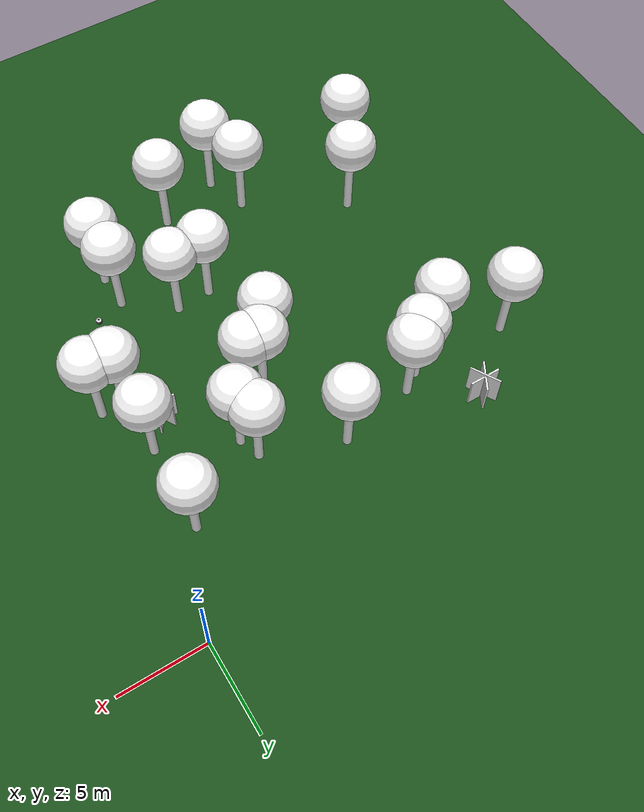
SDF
<sdf version="1.8">
 <world name="forest_world">
  <model name="fire_29">
   <pose>-3.76 -12.13 1.00 0 0 0.00</pose>
   <static>true</static>
   <link name="fire_link">
    <visual name="fire_29_fire_main_0">
     <geometry><box><size>1.80 0.10 2.00</size></box></geometry>
     <material>
      <ambient>0.7 0.35 0.0 1</ambient>
      <diffuse>1 1 1 1</diffuse>
      <specular>0 0 0 1</specular>
      <emissive>0 0 0 1</emissive>
      <pbr>
       <metal><albedo_map>textures/fire.png</albedo_map><metalness>0.0</metalness><roughness>0.6</roughness></metal>
      </pbr>
     </material>
     <transparency>0.0</transparency>
     <cast_shadows>false</cast_shadows>
    </visual>
    <visual name="fire_29_fire_60_1">
     <pose>0.00 0.00 0.10 0 0 1.05</pose>
     <geometry><box><size>1.80 0.10 2.00</size></box></geometry>
     <material>
      <ambient>0.7 0.35 0.0 1</ambient>
      <diffuse>1 1 1 1</diffuse>
      <specular>0 0 0 1</specular>
      <emissive>0 0 0 1</emissive>
      <pbr>
       <metal><albedo_map>textures/fire.png</albedo_map><metalness>0.0</metalness><roughness>0.6</roughness></metal>
      </pbr>
     </material>
     <transparency>0.0</transparency>
     <cast_shadows>false</cast_shadows>
    </visual>
    <visual name="fire_29_fire_120_2">
     <pose>0.00 0.00 0.20 0 0 2.09</pose>
     <geometry><box><size>1.80 0.10 2.00</size></box></geometry>
     <material>
      <ambient>0.7 0.35 0.0 1</ambient>
      <diffuse>1 1 1 1</diffuse>
      <specular>0 0 0 1</specular>
      <emissive>0 0 0 1</emissive>
      <pbr>
       <metal><albedo_map>textures/fire.png</albedo_map><metalness>0.0</metalness><roughness>0.6</roughness></metal>
      </pbr>
     </material>
     <transparency>0.0</transparency>
     <cast_shadows>false</cast_shadows>
    </visual>
    <light type="point" name="fire_29_light_0">
     <pose>0.40 0.00 0.50 0 0 0</pose>
     <diffuse>1.0 0.7 0.3 1</diffuse>
     <specular>1.0 0.8 0.3 1</specular>
     <intensity>2</intensity>
     <attenuation>
      <range>2</range>
      <constant>0.1</constant>
      <linear>0.05</linear>
      <quadratic>0.02</quadratic>
     </attenuation>
     <cast_shadows>false</cast_shadows>
    </light>
    <light type="point" name="fire_29_light_1">
     <pose>-0.20 0.35 0.50 0 0 0</pose>
     <diffuse>1.0 0.7 0.3 1</diffuse>
     <specular>1.0 0.8 0.3 1</specular>
     <intensity>2</intensity>
     <attenuation>
      <range>2</range>
      <constant>0.1</constant>
      <linear>0.05</linear>
      <quadratic>0.02</quadratic>
     </attenuation>
     <cast_shadows>false</cast_shadows>
    </light>
    <light type="point" name="fire_29_light_2">
     <pose>-0.20 -0.35 0.50 0 0 0</pose>
     <diffuse>1.0 0.7 0.3 1</diffuse>
     <specular>1.0 0.8 0.3 1</specular>
     <intensity>2</intensity>
     <attenuation>
      <range>2</range>
      <constant>0.1</constant>
      <linear>0.05</linear>
      <quadratic>0.02</quadratic>
     </attenuation>
     <cast_shadows>false</cast_shadows>
    </light>
   </link>
   <plugin filename="libignition-gazebo-pose-publisher-system.so" name="ignition::gazebo::systems::PosePublisher">
    <frame_id>world</frame_id>
    <publish_link_pose>true</publish_link_pose>
    <use_pose_vector_msg>true</use_pose_vector_msg>
    <static_publisher>true</static_publisher>
    <static_update_frequency>1</static_update_frequency>
   </plugin>
  </model>
  <model name="fire_40">
   <pose>-19.46 -4.42 1.00 0 0 0.00</pose>
   <static>true</static>
   <link name="fire_link">
    <visual name="fire_40_fire_main_0">
     <geometry><box><size>1.80 0.10 2.00</size></box></geometry>
     <material>
      <ambient>0.7 0.35 0.0 1</ambient>
      <diffuse>1 1 1 1</diffuse>
      <specular>0 0 0 1</specular>
      <emissive>0 0 0 1</emissive>
      <pbr>
       <metal><albedo_map>textures/fire.png</albedo_map><metalness>0.0</metalness><roughness>0.6</roughness></metal>
      </pbr>
     </material>
     <transparency>0.0</transparency>
     <cast_shadows>false</cast_shadows>
    </visual>
    <visual name="fire_40_fire_60_1">
     <pose>0.00 0.00 0.10 0 0 1.05</pose>
     <geometry><box><size>1.80 0.10 2.00</size></box></geometry>
     <material>
      <ambient>0.7 0.35 0.0 1</ambient>
      <diffuse>1 1 1 1</diffuse>
      <specular>0 0 0 1</specular>
      <emissive>0 0 0 1</emissive>
      <pbr>
       <metal><albedo_map>textures/fire.png</albedo_map><metalness>0.0</metalness><roughness>0.6</roughness></metal>
      </pbr>
     </material>
     <transparency>0.0</transparency>
     <cast_shadows>false</cast_shadows>
    </visual>
    <visual name="fire_40_fire_120_2">
     <pose>0.00 0.00 0.20 0 0 2.09</pose>
     <geometry><box><size>1.80 0.10 2.00</size></box></geometry>
     <material>
      <ambient>0.7 0.35 0.0 1</ambient>
      <diffuse>1 1 1 1</diffuse>
      <specular>0 0 0 1</specular>
      <emissive>0 0 0 1</emissive>
      <pbr>
       <metal><albedo_map>textures/fire.png</albedo_map><metalness>0.0</metalness><roughness>0.6</roughness></metal>
      </pbr>
     </material>
     <transparency>0.0</transparency>
     <cast_shadows>false</cast_shadows>
    </visual>
    <light type="point" name="fire_40_light_0">
     <pose>0.40 0.00 0.50 0 0 0</pose>
     <diffuse>1.0 0.7 0.3 1</diffuse>
     <specular>1.0 0.8 0.3 1</specular>
     <intensity>2</intensity>
     <attenuation>
      <range>2</range>
      <constant>0.1</constant>
      <linear>0.05</linear>
      <quadratic>0.02</quadratic>
     </attenuation>
     <cast_shadows>false</cast_shadows>
    </light>
    <light type="point" name="fire_40_light_1">
     <pose>-0.20 0.35 0.50 0 0 0</pose>
     <diffuse>1.0 0.7 0.3 1</diffuse>
     <specular>1.0 0.8 0.3 1</specular>
     <intensity>2</intensity>
     <attenuation>
      <range>2</range>
      <constant>0.1</constant>
      <linear>0.05</linear>
      <quadratic>0.02</quadratic>
     </attenuation>
     <cast_shadows>false</cast_shadows>
    </light>
    <light type="point" name="fire_40_light_2">
     <pose>-0.20 -0.35 0.50 0 0 0</pose>
     <diffuse>1.0 0.7 0.3 1</diffuse>
     <specular>1.0 0.8 0.3 1</specular>
     <intensity>2</intensity>
     <attenuation>
      <range>2</range>
      <constant>0.1</constant>
      <linear>0.05</linear>
      <quadratic>0.02</quadratic>
     </attenuation>
     <cast_shadows>false</cast_shadows>
    </light>
   </link>
   <plugin filename="libignition-gazebo-pose-publisher-system.so" name="ignition::gazebo::systems::PosePublisher">
    <frame_id>world</frame_id>
    <publish_link_pose>true</publish_link_pose>
    <use_pose_vector_msg>true</use_pose_vector_msg>
    <static_publisher>true</static_publisher>
    <static_update_frequency>1</static_update_frequency>
   </plugin>
  </model>
  <model name="tree_simple418">
   <static>1</static>
   <link name="link">
    <pose>0 0 0.1 0 -0 0</pose>
    <collision name="collision_trunk">
     <pose>0 0 2 0 -0 0</pose>
     <geometry><cylinder><radius>0.25</radius><length>4</length></cylinder></geometry>
    </collision>
    <collision name="collision_treetop">
     <pose>0 0 5.2 0 -0 0</pose>
     <geometry><sphere><radius>1.5</radius></sphere></geometry>
    </collision>
    <visual name="trunk">
     <pose>0 0 2 0 -0 0</pose>
     <geometry><cylinder><radius>0.25</radius><length>4</length></cylinder></geometry>
     <material>
      <ambient>0.5 0.5 0.5 1</ambient>
      <diffuse>1.0 1.0 1.0 1</diffuse>
      <specular>0.0 0.0 0.0 1</specular>
      <pbr>
       <metal>
        <albedo_map>../worlds/textures/tree_simple_trunk.jpg</albedo_map>
        <metalness>0.0</metalness>
        <roughness>0.8</roughness>
       </metal>
      </pbr>
     </material>
    </visual>
    <visual name="treetop">
     <pose>0 0 5.2 0 -0 0</pose>
     <geometry><sphere><radius>1.5</radius></sphere></geometry>
     <material>
      <ambient>0.5 0.5 0.5 1</ambient>
      <diffuse>1.0 1.0 1.0 1</diffuse>
      <specular>0.0 0.0 0.0 1</specular>
      <pbr>
       <metal>
        <albedo_map>../worlds/textures/tree_simple_treetop.jpg</albedo_map>
        <metalness>0.0</metalness>
        <roughness>0.9</roughness>
       </metal>
      </pbr>
     </material>
    </visual>
   </link>
   <pose>-22.9841604277 -7.39292719752 0 0 -0 0</pose>
  </model>
  <model name="tree_simple415">
   <static>1</static>
   <link name="link">
    <pose>0 0 0.1 0 -0 0</pose>
    <collision name="collision_trunk">
     <pose>0 0 2 0 -0 0</pose>
     <geometry><cylinder><radius>0.25</radius><length>4</length></cylinder></geometry>
    </collision>
    <collision name="collision_treetop">
     <pose>0 0 5.2 0 -0 0</pose>
     <geometry><sphere><radius>1.5</radius></sphere></geometry>
    </collision>
    <visual name="trunk">
     <pose>0 0 2 0 -0 0</pose>
     <geometry><cylinder><radius>0.25</radius><length>4</length></cylinder></geometry>
     <material>
      <ambient>0.5 0.5 0.5 1</ambient>
      <diffuse>1.0 1.0 1.0 1</diffuse>
      <specular>0.0 0.0 0.0 1</specular>
      <pbr>
       <metal>
        <albedo_map>../worlds/textures/tree_simple_trunk.jpg</albedo_map>
        <metalness>0.0</metalness>
        <roughness>0.8</roughness>
       </metal>
      </pbr>
     </material>
    </visual>
    <visual name="treetop">
     <pose>0 0 5.2 0 -0 0</pose>
     <geometry><sphere><radius>1.5</radius></sphere></geometry>
     <material>
      <ambient>0.5 0.5 0.5 1</ambient>
      <diffuse>1.0 1.0 1.0 1</diffuse>
      <specular>0.0 0.0 0.0 1</specular>
      <pbr>
       <metal>
        <albedo_map>../worlds/textures/tree_simple_treetop.jpg</albedo_map>
        <metalness>0.0</metalness>
        <roughness>0.9</roughness>
       </metal>
      </pbr>
     </material>
    </visual>
   </link>
   <pose>-11.6355979465 -5.8252534874 0 0 -0 0</pose>
  </model>
  <model name="tree_simple395">
   <static>1</static>
   <link name="link">
    <pose>0 0 0.1 0 -0 0</pose>
    <collision name="collision_trunk">
     <pose>0 0 2 0 -0 0</pose>
     <geometry><cylinder><radius>0.25</radius><length>4</length></cylinder></geometry>
    </collision>
    <collision name="collision_treetop">
     <pose>0 0 5.2 0 -0 0</pose>
     <geometry><sphere><radius>1.5</radius></sphere></geometry>
    </collision>
    <visual name="trunk">
     <pose>0 0 2 0 -0 0</pose>
     <geometry><cylinder><radius>0.25</radius><length>4</length></cylinder></geometry>
     <material>
      <ambient>0.5 0.5 0.5 1</ambient>
      <diffuse>1.0 1.0 1.0 1</diffuse>
      <specular>0.0 0.0 0.0 1</specular>
      <pbr>
       <metal>
        <albedo_map>../worlds/textures/tree_simple_trunk.jpg</albedo_map>
        <metalness>0.0</metalness>
        <roughness>0.8</roughness>
       </metal>
      </pbr>
     </material>
    </visual>
    <visual name="treetop">
     <pose>0 0 5.2 0 -0 0</pose>
     <geometry><sphere><radius>1.5</radius></sphere></geometry>
     <material>
      <ambient>0.5 0.5 0.5 1</ambient>
      <diffuse>1.0 1.0 1.0 1</diffuse>
      <specular>0.0 0.0 0.0 1</specular>
      <pbr>
       <metal>
        <albedo_map>../worlds/textures/tree_simple_treetop.jpg</albedo_map>
        <metalness>0.0</metalness>
        <roughness>0.9</roughness>
       </metal>
      </pbr>
     </material>
    </visual>
   </link>
   <pose>-14.8909068885 -23.0244241553 0 0 -0 0</pose>
  </model>
  <model name="tree_simple392">
   <static>1</static>
   <link name="link">
    <pose>0 0 0.1 0 -0 0</pose>
    <collision name="collision_trunk">
     <pose>0 0 2 0 -0 0</pose>
     <geometry><cylinder><radius>0.25</radius><length>4</length></cylinder></geometry>
    </collision>
    <collision name="collision_treetop">
     <pose>0 0 5.2 0 -0 0</pose>
     <geometry><sphere><radius>1.5</radius></sphere></geometry>
    </collision>
    <visual name="trunk">
     <pose>0 0 2 0 -0 0</pose>
     <geometry><cylinder><radius>0.25</radius><length>4</length></cylinder></geometry>
     <material>
      <ambient>0.5 0.5 0.5 1</ambient>
      <diffuse>1.0 1.0 1.0 1</diffuse>
      <specular>0.0 0.0 0.0 1</specular>
      <pbr>
       <metal>
        <albedo_map>../worlds/textures/tree_simple_trunk.jpg</albedo_map>
        <metalness>0.0</metalness>
        <roughness>0.8</roughness>
       </metal>
      </pbr>
     </material>
    </visual>
    <visual name="treetop">
     <pose>0 0 5.2 0 -0 0</pose>
     <geometry><sphere><radius>1.5</radius></sphere></geometry>
     <material>
      <ambient>0.5 0.5 0.5 1</ambient>
      <diffuse>1.0 1.0 1.0 1</diffuse>
      <specular>0.0 0.0 0.0 1</specular>
      <pbr>
       <metal>
        <albedo_map>../worlds/textures/tree_simple_treetop.jpg</albedo_map>
        <metalness>0.0</metalness>
        <roughness>0.9</roughness>
       </metal>
      </pbr>
     </material>
    </visual>
   </link>
   <pose>-2.49227665262 -10.6347787598 0 0 -0 0</pose>
  </model>
  <model name="tree_simple386">
   <static>1</static>
   <link name="link">
    <pose>0 0 0.1 0 -0 0</pose>
    <collision name="collision_trunk">
     <pose>0 0 2 0 -0 0</pose>
     <geometry><cylinder><radius>0.25</radius><length>4</length></cylinder></geometry>
    </collision>
    <collision name="collision_treetop">
     <pose>0 0 5.2 0 -0 0</pose>
     <geometry><sphere><radius>1.5</radius></sphere></geometry>
    </collision>
    <visual name="trunk">
     <pose>0 0 2 0 -0 0</pose>
     <geometry><cylinder><radius>0.25</radius><length>4</length></cylinder></geometry>
     <material>
      <ambient>0.5 0.5 0.5 1</ambient>
      <diffuse>1.0 1.0 1.0 1</diffuse>
      <specular>0.0 0.0 0.0 1</specular>
      <pbr>
       <metal>
        <albedo_map>../worlds/textures/tree_simple_trunk.jpg</albedo_map>
        <metalness>0.0</metalness>
        <roughness>0.8</roughness>
       </metal>
      </pbr>
     </material>
    </visual>
    <visual name="treetop">
     <pose>0 0 5.2 0 -0 0</pose>
     <geometry><sphere><radius>1.5</radius></sphere></geometry>
     <material>
      <ambient>0.5 0.5 0.5 1</ambient>
      <diffuse>1.0 1.0 1.0 1</diffuse>
      <specular>0.0 0.0 0.0 1</specular>
      <pbr>
       <metal>
        <albedo_map>../worlds/textures/tree_simple_treetop.jpg</albedo_map>
        <metalness>0.0</metalness>
        <roughness>0.9</roughness>
       </metal>
      </pbr>
     </material>
    </visual>
   </link>
   <pose>-19.2490777258 -8.77456979873 0 0 -0 0</pose>
  </model>
  <model name="tree_simple364">
   <static>1</static>
   <link name="link">
    <pose>0 0 0.1 0 -0 0</pose>
    <collision name="collision_trunk">
     <pose>0 0 2 0 -0 0</pose>
     <geometry><cylinder><radius>0.25</radius><length>4</length></cylinder></geometry>
    </collision>
    <collision name="collision_treetop">
     <pose>0 0 5.2 0 -0 0</pose>
     <geometry><sphere><radius>1.5</radius></sphere></geometry>
    </collision>
    <visual name="trunk">
     <pose>0 0 2 0 -0 0</pose>
     <geometry><cylinder><radius>0.25</radius><length>4</length></cylinder></geometry>
     <material>
      <ambient>0.5 0.5 0.5 1</ambient>
      <diffuse>1.0 1.0 1.0 1</diffuse>
      <specular>0.0 0.0 0.0 1</specular>
      <pbr>
       <metal>
        <albedo_map>../worlds/textures/tree_simple_trunk.jpg</albedo_map>
        <metalness>0.0</metalness>
        <roughness>0.8</roughness>
       </metal>
      </pbr>
     </material>
    </visual>
    <visual name="treetop">
     <pose>0 0 5.2 0 -0 0</pose>
     <geometry><sphere><radius>1.5</radius></sphere></geometry>
     <material>
      <ambient>0.5 0.5 0.5 1</ambient>
      <diffuse>1.0 1.0 1.0 1</diffuse>
      <specular>0.0 0.0 0.0 1</specular>
      <pbr>
       <metal>
        <albedo_map>../worlds/textures/tree_simple_treetop.jpg</albedo_map>
        <metalness>0.0</metalness>
        <roughness>0.9</roughness>
       </metal>
      </pbr>
     </material>
    </visual>
   </link>
   <pose>-5.23612591395 -20.1562951187 0 0 -0 0</pose>
  </model>
  <model name="tree_simple349">
   <static>1</static>
   <link name="link">
    <pose>0 0 0.1 0 -0 0</pose>
    <collision name="collision_trunk">
     <pose>0 0 2 0 -0 0</pose>
     <geometry><cylinder><radius>0.25</radius><length>4</length></cylinder></geometry>
    </collision>
    <collision name="collision_treetop">
     <pose>0 0 5.2 0 -0 0</pose>
     <geometry><sphere><radius>1.5</radius></sphere></geometry>
    </collision>
    <visual name="trunk">
     <pose>0 0 2 0 -0 0</pose>
     <geometry><cylinder><radius>0.25</radius><length>4</length></cylinder></geometry>
     <material>
      <ambient>0.5 0.5 0.5 1</ambient>
      <diffuse>1.0 1.0 1.0 1</diffuse>
      <specular>0.0 0.0 0.0 1</specular>
      <pbr>
       <metal>
        <albedo_map>../worlds/textures/tree_simple_trunk.jpg</albedo_map>
        <metalness>0.0</metalness>
        <roughness>0.8</roughness>
       </metal>
      </pbr>
     </material>
    </visual>
    <visual name="treetop">
     <pose>0 0 5.2 0 -0 0</pose>
     <geometry><sphere><radius>1.5</radius></sphere></geometry>
     <material>
      <ambient>0.5 0.5 0.5 1</ambient>
      <diffuse>1.0 1.0 1.0 1</diffuse>
      <specular>0.0 0.0 0.0 1</specular>
      <pbr>
       <metal>
        <albedo_map>../worlds/textures/tree_simple_treetop.jpg</albedo_map>
        <metalness>0.0</metalness>
        <roughness>0.9</roughness>
       </metal>
      </pbr>
     </material>
    </visual>
   </link>
   <pose>-20.4686708935 -19.6389151122 0 0 -0 0</pose>
  </model>
  <model name="tree_simple347">
   <static>1</static>
   <link name="link">
    <pose>0 0 0.1 0 -0 0</pose>
    <collision name="collision_trunk">
     <pose>0 0 2 0 -0 0</pose>
     <geometry><cylinder><radius>0.25</radius><length>4</length></cylinder></geometry>
    </collision>
    <collision name="collision_treetop">
     <pose>0 0 5.2 0 -0 0</pose>
     <geometry><sphere><radius>1.5</radius></sphere></geometry>
    </collision>
    <visual name="trunk">
     <pose>0 0 2 0 -0 0</pose>
     <geometry><cylinder><radius>0.25</radius><length>4</length></cylinder></geometry>
     <material>
      <ambient>0.5 0.5 0.5 1</ambient>
      <diffuse>1.0 1.0 1.0 1</diffuse>
      <specular>0.0 0.0 0.0 1</specular>
      <pbr>
       <metal>
        <albedo_map>../worlds/textures/tree_simple_trunk.jpg</albedo_map>
        <metalness>0.0</metalness>
        <roughness>0.8</roughness>
       </metal>
      </pbr>
     </material>
    </visual>
    <visual name="treetop">
     <pose>0 0 5.2 0 -0 0</pose>
     <geometry><sphere><radius>1.5</radius></sphere></geometry>
     <material>
      <ambient>0.5 0.5 0.5 1</ambient>
      <diffuse>1.0 1.0 1.0 1</diffuse>
      <specular>0.0 0.0 0.0 1</specular>
      <pbr>
       <metal>
        <albedo_map>../worlds/textures/tree_simple_treetop.jpg</albedo_map>
        <metalness>0.0</metalness>
        <roughness>0.9</roughness>
       </metal>
      </pbr>
     </material>
    </visual>
   </link>
   <pose>-10.2981062424 -24.1175281228 0 0 -0 0</pose>
  </model>
  <model name="tree_simple322">
   <static>1</static>
   <link name="link">
    <pose>0 0 0.1 0 -0 0</pose>
    <collision name="collision_trunk">
     <pose>0 0 2 0 -0 0</pose>
     <geometry><cylinder><radius>0.25</radius><length>4</length></cylinder></geometry>
    </collision>
    <collision name="collision_treetop">
     <pose>0 0 5.2 0 -0 0</pose>
     <geometry><sphere><radius>1.5</radius></sphere></geometry>
    </collision>
    <visual name="trunk">
     <pose>0 0 2 0 -0 0</pose>
     <geometry><cylinder><radius>0.25</radius><length>4</length></cylinder></geometry>
     <material>
      <ambient>0.5 0.5 0.5 1</ambient>
      <diffuse>1.0 1.0 1.0 1</diffuse>
      <specular>0.0 0.0 0.0 1</specular>
      <pbr>
       <metal>
        <albedo_map>../worlds/textures/tree_simple_trunk.jpg</albedo_map>
        <metalness>0.0</metalness>
        <roughness>0.8</roughness>
       </metal>
      </pbr>
     </material>
    </visual>
    <visual name="treetop">
     <pose>0 0 5.2 0 -0 0</pose>
     <geometry><sphere><radius>1.5</radius></sphere></geometry>
     <material>
      <ambient>0.5 0.5 0.5 1</ambient>
      <diffuse>1.0 1.0 1.0 1</diffuse>
      <specular>0.0 0.0 0.0 1</specular>
      <pbr>
       <metal>
        <albedo_map>../worlds/textures/tree_simple_treetop.jpg</albedo_map>
        <metalness>0.0</metalness>
        <roughness>0.9</roughness>
       </metal>
      </pbr>
     </material>
    </visual>
   </link>
   <pose>-10.7837387112 -12.8598856653 0 0 -0 0</pose>
  </model>
  <model name="tree_simple303">
   <static>1</static>
   <link name="link">
    <pose>0 0 0.1 0 -0 0</pose>
    <collision name="collision_trunk">
     <pose>0 0 2 0 -0 0</pose>
     <geometry><cylinder><radius>0.25</radius><length>4</length></cylinder></geometry>
    </collision>
    <collision name="collision_treetop">
     <pose>0 0 5.2 0 -0 0</pose>
     <geometry><sphere><radius>1.5</radius></sphere></geometry>
    </collision>
    <visual name="trunk">
     <pose>0 0 2 0 -0 0</pose>
     <geometry><cylinder><radius>0.25</radius><length>4</length></cylinder></geometry>
     <material>
      <ambient>0.5 0.5 0.5 1</ambient>
      <diffuse>1.0 1.0 1.0 1</diffuse>
      <specular>0.0 0.0 0.0 1</specular>
      <pbr>
       <metal>
        <albedo_map>../worlds/textures/tree_simple_trunk.jpg</albedo_map>
        <metalness>0.0</metalness>
        <roughness>0.8</roughness>
       </metal>
      </pbr>
     </material>
    </visual>
    <visual name="treetop">
     <pose>0 0 5.2 0 -0 0</pose>
     <geometry><sphere><radius>1.5</radius></sphere></geometry>
     <material>
      <ambient>0.5 0.5 0.5 1</ambient>
      <diffuse>1.0 1.0 1.0 1</diffuse>
      <specular>0.0 0.0 0.0 1</specular>
      <pbr>
       <metal>
        <albedo_map>../worlds/textures/tree_simple_treetop.jpg</albedo_map>
        <metalness>0.0</metalness>
        <roughness>0.9</roughness>
       </metal>
      </pbr>
     </material>
    </visual>
   </link>
   <pose>-9.56094886719 -11.2139048457 0 0 -0 0</pose>
  </model>
  <model name="tree_simple268">
   <static>1</static>
   <link name="link">
    <pose>0 0 0.1 0 -0 0</pose>
    <collision name="collision_trunk">
     <pose>0 0 2 0 -0 0</pose>
     <geometry><cylinder><radius>0.25</radius><length>4</length></cylinder></geometry>
    </collision>
    <collision name="collision_treetop">
     <pose>0 0 5.2 0 -0 0</pose>
     <geometry><sphere><radius>1.5</radius></sphere></geometry>
    </collision>
    <visual name="trunk">
     <pose>0 0 2 0 -0 0</pose>
     <geometry><cylinder><radius>0.25</radius><length>4</length></cylinder></geometry>
     <material>
      <ambient>0.5 0.5 0.5 1</ambient>
      <diffuse>1.0 1.0 1.0 1</diffuse>
      <specular>0.0 0.0 0.0 1</specular>
      <pbr>
       <metal>
        <albedo_map>../worlds/textures/tree_simple_trunk.jpg</albedo_map>
        <metalness>0.0</metalness>
        <roughness>0.8</roughness>
       </metal>
      </pbr>
     </material>
    </visual>
    <visual name="treetop">
     <pose>0 0 5.2 0 -0 0</pose>
     <geometry><sphere><radius>1.5</radius></sphere></geometry>
     <material>
      <ambient>0.5 0.5 0.5 1</ambient>
      <diffuse>1.0 1.0 1.0 1</diffuse>
      <specular>0.0 0.0 0.0 1</specular>
      <pbr>
       <metal>
        <albedo_map>../worlds/textures/tree_simple_treetop.jpg</albedo_map>
        <metalness>0.0</metalness>
        <roughness>0.9</roughness>
       </metal>
      </pbr>
     </material>
    </visual>
   </link>
   <pose>-9.9717965144 -18.2645258901 0 0 -0 0</pose>
  </model>
  <model name="tree_simple253">
   <static>1</static>
   <link name="link">
    <pose>0 0 0.1 0 -0 0</pose>
    <collision name="collision_trunk">
     <pose>0 0 2 0 -0 0</pose>
     <geometry><cylinder><radius>0.25</radius><length>4</length></cylinder></geometry>
    </collision>
    <collision name="collision_treetop">
     <pose>0 0 5.2 0 -0 0</pose>
     <geometry><sphere><radius>1.5</radius></sphere></geometry>
    </collision>
    <visual name="trunk">
     <pose>0 0 2 0 -0 0</pose>
     <geometry><cylinder><radius>0.25</radius><length>4</length></cylinder></geometry>
     <material>
      <ambient>0.5 0.5 0.5 1</ambient>
      <diffuse>1.0 1.0 1.0 1</diffuse>
      <specular>0.0 0.0 0.0 1</specular>
      <pbr>
       <metal>
        <albedo_map>../worlds/textures/tree_simple_trunk.jpg</albedo_map>
        <metalness>0.0</metalness>
        <roughness>0.8</roughness>
       </metal>
      </pbr>
     </material>
    </visual>
    <visual name="treetop">
     <pose>0 0 5.2 0 -0 0</pose>
     <geometry><sphere><radius>1.5</radius></sphere></geometry>
     <material>
      <ambient>0.5 0.5 0.5 1</ambient>
      <diffuse>1.0 1.0 1.0 1</diffuse>
      <specular>0.0 0.0 0.0 1</specular>
      <pbr>
       <metal>
        <albedo_map>../worlds/textures/tree_simple_treetop.jpg</albedo_map>
        <metalness>0.0</metalness>
        <roughness>0.9</roughness>
       </metal>
      </pbr>
     </material>
    </visual>
   </link>
   <pose>-6.71887912458 -8.7537434381 0 0 -0 0</pose>
  </model>
  <model name="tree_simple234">
   <static>1</static>
   <link name="link">
    <pose>0 0 0.1 0 -0 0</pose>
    <collision name="collision_trunk">
     <pose>0 0 2 0 -0 0</pose>
     <geometry><cylinder><radius>0.25</radius><length>4</length></cylinder></geometry>
    </collision>
    <collision name="collision_treetop">
     <pose>0 0 5.2 0 -0 0</pose>
     <geometry><sphere><radius>1.5</radius></sphere></geometry>
    </collision>
    <visual name="trunk">
     <pose>0 0 2 0 -0 0</pose>
     <geometry><cylinder><radius>0.25</radius><length>4</length></cylinder></geometry>
     <material>
      <ambient>0.5 0.5 0.5 1</ambient>
      <diffuse>1.0 1.0 1.0 1</diffuse>
      <specular>0.0 0.0 0.0 1</specular>
      <pbr>
       <metal>
        <albedo_map>../worlds/textures/tree_simple_trunk.jpg</albedo_map>
        <metalness>0.0</metalness>
        <roughness>0.8</roughness>
       </metal>
      </pbr>
     </material>
    </visual>
    <visual name="treetop">
     <pose>0 0 5.2 0 -0 0</pose>
     <geometry><sphere><radius>1.5</radius></sphere></geometry>
     <material>
      <ambient>0.5 0.5 0.5 1</ambient>
      <diffuse>1.0 1.0 1.0 1</diffuse>
      <specular>0.0 0.0 0.0 1</specular>
      <pbr>
       <metal>
        <albedo_map>../worlds/textures/tree_simple_treetop.jpg</albedo_map>
        <metalness>0.0</metalness>
        <roughness>0.9</roughness>
       </metal>
      </pbr>
     </material>
    </visual>
   </link>
   <pose>-7.13671903639 -7.51188908491 0 0 -0 0</pose>
  </model>
  <model name="tree_simple201">
   <static>1</static>
   <link name="link">
    <pose>0 0 0.1 0 -0 0</pose>
    <collision name="collision_trunk">
     <pose>0 0 2 0 -0 0</pose>
     <geometry><cylinder><radius>0.25</radius><length>4</length></cylinder></geometry>
    </collision>
    <collision name="collision_treetop">
     <pose>0 0 5.2 0 -0 0</pose>
     <geometry><sphere><radius>1.5</radius></sphere></geometry>
    </collision>
    <visual name="trunk">
     <pose>0 0 2 0 -0 0</pose>
     <geometry><cylinder><radius>0.25</radius><length>4</length></cylinder></geometry>
     <material>
      <ambient>0.5 0.5 0.5 1</ambient>
      <diffuse>1.0 1.0 1.0 1</diffuse>
      <specular>0.0 0.0 0.0 1</specular>
      <pbr>
       <metal>
        <albedo_map>../worlds/textures/tree_simple_trunk.jpg</albedo_map>
        <metalness>0.0</metalness>
        <roughness>0.8</roughness>
       </metal>
      </pbr>
     </material>
    </visual>
    <visual name="treetop">
     <pose>0 0 5.2 0 -0 0</pose>
     <geometry><sphere><radius>1.5</radius></sphere></geometry>
     <material>
      <ambient>0.5 0.5 0.5 1</ambient>
      <diffuse>1.0 1.0 1.0 1</diffuse>
      <specular>0.0 0.0 0.0 1</specular>
      <pbr>
       <metal>
        <albedo_map>../worlds/textures/tree_simple_treetop.jpg</albedo_map>
        <metalness>0.0</metalness>
        <roughness>0.9</roughness>
       </metal>
      </pbr>
     </material>
    </visual>
   </link>
   <pose>-16.1062713361 -6.72563548396 0 0 -0 0</pose>
  </model>
  <model name="tree_simple200">
   <static>1</static>
   <link name="link">
    <pose>0 0 0.1 0 -0 0</pose>
    <collision name="collision_trunk">
     <pose>0 0 2 0 -0 0</pose>
     <geometry><cylinder><radius>0.25</radius><length>4</length></cylinder></geometry>
    </collision>
    <collision name="collision_treetop">
     <pose>0 0 5.2 0 -0 0</pose>
     <geometry><sphere><radius>1.5</radius></sphere></geometry>
    </collision>
    <visual name="trunk">
     <pose>0 0 2 0 -0 0</pose>
     <geometry><cylinder><radius>0.25</radius><length>4</length></cylinder></geometry>
     <material>
      <ambient>0.5 0.5 0.5 1</ambient>
      <diffuse>1.0 1.0 1.0 1</diffuse>
      <specular>0.0 0.0 0.0 1</specular>
      <pbr>
       <metal>
        <albedo_map>../worlds/textures/tree_simple_trunk.jpg</albedo_map>
        <metalness>0.0</metalness>
        <roughness>0.8</roughness>
       </metal>
      </pbr>
     </material>
    </visual>
    <visual name="treetop">
     <pose>0 0 5.2 0 -0 0</pose>
     <geometry><sphere><radius>1.5</radius></sphere></geometry>
     <material>
      <ambient>0.5 0.5 0.5 1</ambient>
      <diffuse>1.0 1.0 1.0 1</diffuse>
      <specular>0.0 0.0 0.0 1</specular>
      <pbr>
       <metal>
        <albedo_map>../worlds/textures/tree_simple_treetop.jpg</albedo_map>
        <metalness>0.0</metalness>
        <roughness>0.9</roughness>
       </metal>
      </pbr>
     </material>
    </visual>
   </link>
   <pose>-22.1853775811 -22.9371972628 0 0 -0 0</pose>
  </model>
  <model name="tree_simple155">
   <static>1</static>
   <link name="link">
    <pose>0 0 0.1 0 -0 0</pose>
    <collision name="collision_trunk">
     <pose>0 0 2 0 -0 0</pose>
     <geometry><cylinder><radius>0.25</radius><length>4</length></cylinder></geometry>
    </collision>
    <collision name="collision_treetop">
     <pose>0 0 5.2 0 -0 0</pose>
     <geometry><sphere><radius>1.5</radius></sphere></geometry>
    </collision>
    <visual name="trunk">
     <pose>0 0 2 0 -0 0</pose>
     <geometry><cylinder><radius>0.25</radius><length>4</length></cylinder></geometry>
     <material>
      <ambient>0.5 0.5 0.5 1</ambient>
      <diffuse>1.0 1.0 1.0 1</diffuse>
      <specular>0.0 0.0 0.0 1</specular>
      <pbr>
       <metal>
        <albedo_map>../worlds/textures/tree_simple_trunk.jpg</albedo_map>
        <metalness>0.0</metalness>
        <roughness>0.8</roughness>
       </metal>
      </pbr>
     </material>
    </visual>
    <visual name="treetop">
     <pose>0 0 5.2 0 -0 0</pose>
     <geometry><sphere><radius>1.5</radius></sphere></geometry>
     <material>
      <ambient>0.5 0.5 0.5 1</ambient>
      <diffuse>1.0 1.0 1.0 1</diffuse>
      <specular>0.0 0.0 0.0 1</specular>
      <pbr>
       <metal>
        <albedo_map>../worlds/textures/tree_simple_treetop.jpg</albedo_map>
        <metalness>0.0</metalness>
        <roughness>0.9</roughness>
       </metal>
      </pbr>
     </material>
    </visual>
   </link>
   <pose>-2.3717624472 -13.9733365428 0 0 -0 0</pose>
  </model>
  <model name="tree_simple140">
   <static>1</static>
   <link name="link">
    <pose>0 0 0.1 0 -0 0</pose>
    <collision name="collision_trunk">
     <pose>0 0 2 0 -0 0</pose>
     <geometry><cylinder><radius>0.25</radius><length>4</length></cylinder></geometry>
    </collision>
    <collision name="collision_treetop">
     <pose>0 0 5.2 0 -0 0</pose>
     <geometry><sphere><radius>1.5</radius></sphere></geometry>
    </collision>
    <visual name="trunk">
     <pose>0 0 2 0 -0 0</pose>
     <geometry><cylinder><radius>0.25</radius><length>4</length></cylinder></geometry>
     <material>
      <ambient>0.5 0.5 0.5 1</ambient>
      <diffuse>1.0 1.0 1.0 1</diffuse>
      <specular>0.0 0.0 0.0 1</specular>
      <pbr>
       <metal>
        <albedo_map>../worlds/textures/tree_simple_trunk.jpg</albedo_map>
        <metalness>0.0</metalness>
        <roughness>0.8</roughness>
       </metal>
      </pbr>
     </material>
    </visual>
    <visual name="treetop">
     <pose>0 0 5.2 0 -0 0</pose>
     <geometry><sphere><radius>1.5</radius></sphere></geometry>
     <material>
      <ambient>0.5 0.5 0.5 1</ambient>
      <diffuse>1.0 1.0 1.0 1</diffuse>
      <specular>0.0 0.0 0.0 1</specular>
      <pbr>
       <metal>
        <albedo_map>../worlds/textures/tree_simple_treetop.jpg</albedo_map>
        <metalness>0.0</metalness>
        <roughness>0.9</roughness>
       </metal>
      </pbr>
     </material>
    </visual>
   </link>
   <pose>-1.08104360216 -14.0922455385 0 0 -0 0</pose>
  </model>
  <model name="tree_simple138">
   <static>1</static>
   <link name="link">
    <pose>0 0 0.1 0 -0 0</pose>
    <collision name="collision_trunk">
     <pose>0 0 2 0 -0 0</pose>
     <geometry><cylinder><radius>0.25</radius><length>4</length></cylinder></geometry>
    </collision>
    <collision name="collision_treetop">
     <pose>0 0 5.2 0 -0 0</pose>
     <geometry><sphere><radius>1.5</radius></sphere></geometry>
    </collision>
    <visual name="trunk">
     <pose>0 0 2 0 -0 0</pose>
     <geometry><cylinder><radius>0.25</radius><length>4</length></cylinder></geometry>
     <material>
      <ambient>0.5 0.5 0.5 1</ambient>
      <diffuse>1.0 1.0 1.0 1</diffuse>
      <specular>0.0 0.0 0.0 1</specular>
      <pbr>
       <metal>
        <albedo_map>../worlds/textures/tree_simple_trunk.jpg</albedo_map>
        <metalness>0.0</metalness>
        <roughness>0.8</roughness>
       </metal>
      </pbr>
     </material>
    </visual>
    <visual name="treetop">
     <pose>0 0 5.2 0 -0 0</pose>
     <geometry><sphere><radius>1.5</radius></sphere></geometry>
     <material>
      <ambient>0.5 0.5 0.5 1</ambient>
      <diffuse>1.0 1.0 1.0 1</diffuse>
      <specular>0.0 0.0 0.0 1</specular>
      <pbr>
       <metal>
        <albedo_map>../worlds/textures/tree_simple_treetop.jpg</albedo_map>
        <metalness>0.0</metalness>
        <roughness>0.9</roughness>
       </metal>
      </pbr>
     </material>
    </visual>
   </link>
   <pose>-8.7404095495 -11.2488158501 0 0 -0 0</pose>
  </model>
  <model name="tree_simple89">
   <static>1</static>
   <link name="link">
    <pose>0 0 0.1 0 -0 0</pose>
    <collision name="collision_trunk">
     <pose>0 0 2 0 -0 0</pose>
     <geometry><cylinder><radius>0.25</radius><length>4</length></cylinder></geometry>
    </collision>
    <collision name="collision_treetop">
     <pose>0 0 5.2 0 -0 0</pose>
     <geometry><sphere><radius>1.5</radius></sphere></geometry>
    </collision>
    <visual name="trunk">
     <pose>0 0 2 0 -0 0</pose>
     <geometry><cylinder><radius>0.25</radius><length>4</length></cylinder></geometry>
     <material>
      <ambient>0.5 0.5 0.5 1</ambient>
      <diffuse>1.0 1.0 1.0 1</diffuse>
      <specular>0.0 0.0 0.0 1</specular>
      <pbr>
       <metal>
        <albedo_map>../worlds/textures/tree_simple_trunk.jpg</albedo_map>
        <metalness>0.0</metalness>
        <roughness>0.8</roughness>
       </metal>
      </pbr>
     </material>
    </visual>
    <visual name="treetop">
     <pose>0 0 5.2 0 -0 0</pose>
     <geometry><sphere><radius>1.5</radius></sphere></geometry>
     <material>
      <ambient>0.5 0.5 0.5 1</ambient>
      <diffuse>1.0 1.0 1.0 1</diffuse>
      <specular>0.0 0.0 0.0 1</specular>
      <pbr>
       <metal>
        <albedo_map>../worlds/textures/tree_simple_treetop.jpg</albedo_map>
        <metalness>0.0</metalness>
        <roughness>0.9</roughness>
       </metal>
      </pbr>
     </material>
    </visual>
   </link>
   <pose>-14.0445145291 -25.4354437198 0 0 -0 0</pose>
  </model>
  <model name="tree_simple64">
   <static>1</static>
   <link name="link">
    <pose>0 0 0.1 0 -0 0</pose>
    <collision name="collision_trunk">
     <pose>0 0 2 0 -0 0</pose>
     <geometry><cylinder><radius>0.25</radius><length>4</length></cylinder></geometry>
    </collision>
    <collision name="collision_treetop">
     <pose>0 0 5.2 0 -0 0</pose>
     <geometry><sphere><radius>1.5</radius></sphere></geometry>
    </collision>
    <visual name="trunk">
     <pose>0 0 2 0 -0 0</pose>
     <geometry><cylinder><radius>0.25</radius><length>4</length></cylinder></geometry>
     <material>
      <ambient>0.5 0.5 0.5 1</ambient>
      <diffuse>1.0 1.0 1.0 1</diffuse>
      <specular>0.0 0.0 0.0 1</specular>
      <pbr>
       <metal>
        <albedo_map>../worlds/textures/tree_simple_trunk.jpg</albedo_map>
        <metalness>0.0</metalness>
        <roughness>0.8</roughness>
       </metal>
      </pbr>
     </material>
    </visual>
    <visual name="treetop">
     <pose>0 0 5.2 0 -0 0</pose>
     <geometry><sphere><radius>1.5</radius></sphere></geometry>
     <material>
      <ambient>0.5 0.5 0.5 1</ambient>
      <diffuse>1.0 1.0 1.0 1</diffuse>
      <specular>0.0 0.0 0.0 1</specular>
      <pbr>
       <metal>
        <albedo_map>../worlds/textures/tree_simple_treetop.jpg</albedo_map>
        <metalness>0.0</metalness>
        <roughness>0.9</roughness>
       </metal>
      </pbr>
     </material>
    </visual>
   </link>
   <pose>-5.16461725533 -22.1747780475 0 0 -0 0</pose>
  </model>
  <model name="tree_simple37">
   <static>1</static>
   <link name="link">
    <pose>0 0 0.1 0 -0 0</pose>
    <collision name="collision_trunk">
     <pose>0 0 2 0 -0 0</pose>
     <geometry><cylinder><radius>0.25</radius><length>4</length></cylinder></geometry>
    </collision>
    <collision name="collision_treetop">
     <pose>0 0 5.2 0 -0 0</pose>
     <geometry><sphere><radius>1.5</radius></sphere></geometry>
    </collision>
    <visual name="trunk">
     <pose>0 0 2 0 -0 0</pose>
     <geometry><cylinder><radius>0.25</radius><length>4</length></cylinder></geometry>
     <material>
      <ambient>0.5 0.5 0.5 1</ambient>
      <diffuse>1.0 1.0 1.0 1</diffuse>
      <specular>0.0 0.0 0.0 1</specular>
      <pbr>
       <metal>
        <albedo_map>../worlds/textures/tree_simple_trunk.jpg</albedo_map>
        <metalness>0.0</metalness>
        <roughness>0.8</roughness>
       </metal>
      </pbr>
     </material>
    </visual>
    <visual name="treetop">
     <pose>0 0 5.2 0 -0 0</pose>
     <geometry><sphere><radius>1.5</radius></sphere></geometry>
     <material>
      <ambient>0.5 0.5 0.5 1</ambient>
      <diffuse>1.0 1.0 1.0 1</diffuse>
      <specular>0.0 0.0 0.0 1</specular>
      <pbr>
       <metal>
        <albedo_map>../worlds/textures/tree_simple_treetop.jpg</albedo_map>
        <metalness>0.0</metalness>
        <roughness>0.9</roughness>
       </metal>
      </pbr>
     </material>
    </visual>
   </link>
   <pose>-17.1200971999 -7.42377639458 0 0 -0 0</pose>
  </model>
  <model name="tree_simple18">
   <static>1</static>
   <link name="link">
    <pose>0 0 0.1 0 -0 0</pose>
    <collision name="collision_trunk">
     <pose>0 0 2 0 -0 0</pose>
     <geometry><cylinder><radius>0.25</radius><length>4</length></cylinder></geometry>
    </collision>
    <collision name="collision_treetop">
     <pose>0 0 5.2 0 -0 0</pose>
     <geometry><sphere><radius>1.5</radius></sphere></geometry>
    </collision>
    <visual name="trunk">
     <pose>0 0 2 0 -0 0</pose>
     <geometry><cylinder><radius>0.25</radius><length>4</length></cylinder></geometry>
     <material>
      <ambient>0.5 0.5 0.5 1</ambient>
      <diffuse>1.0 1.0 1.0 1</diffuse>
      <specular>0.0 0.0 0.0 1</specular>
      <pbr>
       <metal>
        <albedo_map>../worlds/textures/tree_simple_trunk.jpg</albedo_map>
        <metalness>0.0</metalness>
        <roughness>0.8</roughness>
       </metal>
      </pbr>
     </material>
    </visual>
    <visual name="treetop">
     <pose>0 0 5.2 0 -0 0</pose>
     <geometry><sphere><radius>1.5</radius></sphere></geometry>
     <material>
      <ambient>0.5 0.5 0.5 1</ambient>
      <diffuse>1.0 1.0 1.0 1</diffuse>
      <specular>0.0 0.0 0.0 1</specular>
      <pbr>
       <metal>
        <albedo_map>../worlds/textures/tree_simple_treetop.jpg</albedo_map>
        <metalness>0.0</metalness>
        <roughness>0.9</roughness>
       </metal>
      </pbr>
     </material>
    </visual>
   </link>
   <pose>-7.91294561281 -18.0894598626 0 0 -0 0</pose>
  </model>
  <model name="tree_simple2">
   <static>1</static>
   <link name="link">
    <pose>0 0 0.1 0 -0 0</pose>
    <collision name="collision_trunk">
     <pose>0 0 2 0 -0 0</pose>
     <geometry><cylinder><radius>0.25</radius><length>4</length></cylinder></geometry>
    </collision>
    <collision name="collision_treetop">
     <pose>0 0 5.2 0 -0 0</pose>
     <geometry><sphere><radius>1.5</radius></sphere></geometry>
    </collision>
    <visual name="trunk">
     <pose>0 0 2 0 -0 0</pose>
     <geometry><cylinder><radius>0.25</radius><length>4</length></cylinder></geometry>
     <material>
      <ambient>0.5 0.5 0.5 1</ambient>
      <diffuse>1.0 1.0 1.0 1</diffuse>
      <specular>0.0 0.0 0.0 1</specular>
      <pbr>
       <metal>
        <albedo_map>../worlds/textures/tree_simple_trunk.jpg</albedo_map>
        <metalness>0.0</metalness>
        <roughness>0.8</roughness>
       </metal>
      </pbr>
     </material>
    </visual>
    <visual name="treetop">
     <pose>0 0 5.2 0 -0 0</pose>
     <geometry><sphere><radius>1.5</radius></sphere></geometry>
     <material>
      <ambient>0.5 0.5 0.5 1</ambient>
      <diffuse>1.0 1.0 1.0 1</diffuse>
      <specular>0.0 0.0 0.0 1</specular>
      <pbr>
       <metal>
        <albedo_map>../worlds/textures/tree_simple_treetop.jpg</albedo_map>
        <metalness>0.0</metalness>
        <roughness>0.9</roughness>
       </metal>
      </pbr>
     </material>
    </visual>
   </link>
   <pose>-2.32374702534 -5.59991455471 0 0 -0 0</pose>
  </model>
  <model name="ground_plane">
   <static>true</static>
   <link name="link">
    <collision name="collision">
     <geometry><mesh><uri>../worlds/textures/grass_plane.dae</uri><scale>1 1 1</scale></mesh></geometry>
     <surface><friction><ode><mu>1</mu><mu2>1</mu2></ode></friction></surface>
    </collision>
    <visual name="snow">
     <cast_shadows>false</cast_shadows>
     <geometry><mesh><uri>../worlds/textures/grass_plane.dae</uri><scale>1 1 1</scale></mesh></geometry>
     <material>
      <ambient>0.05 0.2 0.05 1</ambient>
      <diffuse>0.1 0.3 0.1 1</diffuse>
      <specular>0.05 0.05 0.05 1</specular>
     </material>
    </visual>
   </link>
  </model>
  <model name="turtlebot4">
   <pose>-3.05 -17.37 3.5 0 0 0</pose>
   <static>false</static>
   <link name="base_link">
    <inertial>
     <mass>2.5</mass>
     <inertia>
      <ixx>0.019995</ixx>
      <ixy>0.0</ixy>
      <ixz>0.0</ixz>
      <iyy>0.019995</iyy>
      <iyz>0.0</iyz>
      <izz>0.03675</izz>
     </inertia>
    </inertial>
    <visual name="base_visual">
     <geometry><cylinder><radius>0.17</radius><length>0.12</length></cylinder></geometry>
     <material><ambient>0.1 0.1 0.1 1</ambient><diffuse>0.1 0.1 0.1 1</diffuse></material>
    </visual>
    <visual name="top_visual">
     <pose>0 0 0.08 0 0 0</pose>
     <geometry><cylinder><radius>0.15</radius><length>0.04</length></cylinder></geometry>
     <material><ambient>0.8 0.8 0.8 1</ambient><diffuse>0.8 0.8 0.8 1</diffuse></material>
    </visual>
    <collision name="base_collision">
     <geometry><cylinder><radius>0.17</radius><length>0.12</length></cylinder></geometry>
    </collision>
   </link>
   <link name="left_wheel">
    <pose>0 0.115 -0.032 -1.5707 0 0</pose>
    <inertial>
     <mass>0.1</mass>
     <inertia><ixx>0.001</ixx><ixy>0.0</ixy><ixz>0.0</ixz><iyy>0.001</iyy><iyz>0.0</iyz><izz>0.001</izz></inertia>
    </inertial>
    <visual name="visual">
     <geometry><cylinder><radius>0.035</radius><length>0.026</length></cylinder></geometry>
     <material><ambient>0.2 0.2 0.2 1</ambient><diffuse>0.2 0.2 0.2 1</diffuse></material>
    </visual>
    <collision name="collision">
     <geometry><cylinder><radius>0.035</radius><length>0.026</length></cylinder></geometry>
     <surface><friction><ode><mu>1.0</mu><mu2>1.0</mu2></ode></friction></surface>
    </collision>
   </link>
   <link name="right_wheel">
    <pose>0 -0.115 -0.032 -1.5707 0 0</pose>
    <inertial>
     <mass>0.1</mass>
     <inertia><ixx>0.001</ixx><ixy>0.0</ixy><ixz>0.0</ixz><iyy>0.001</iyy><iyz>0.0</iyz><izz>0.001</izz></inertia>
    </inertial>
    <visual name="visual">
     <geometry><cylinder><radius>0.035</radius><length>0.026</length></cylinder></geometry>
     <material><ambient>0.2 0.2 0.2 1</ambient><diffuse>0.2 0.2 0.2 1</diffuse></material>
    </visual>
    <collision name="collision">
     <geometry><cylinder><radius>0.035</radius><length>0.026</length></cylinder></geometry>
     <surface><friction><ode><mu>1.0</mu><mu2>1.0</mu2></ode></friction></surface>
    </collision>
   </link>
   <link name="caster_wheel">
    <pose>0.12 0 -0.055 0 0 0</pose>
    <inertial>
     <mass>0.05</mass>
     <inertia>
      <ixx>0.0001</ixx>
      <ixy>0.0</ixy>
      <ixz>0.0</ixz>
      <iyy>0.0001</iyy>
      <iyz>0.0</iyz>
      <izz>0.0001</izz>
     </inertia>
    </inertial>
    <visual name="visual">
     <geometry><sphere><radius>0.012</radius></sphere></geometry>
     <material><ambient>0.3 0.3 0.3 1</ambient><diffuse>0.3 0.3 0.3 1</diffuse></material>
    </visual>
    <collision name="collision">
     <geometry><sphere><radius>0.012</radius></sphere></geometry>
     <surface><friction><ode><mu>0.1</mu><mu2>0.1</mu2></ode></friction></surface>
    </collision>
   </link>
   <link name="lidar_link">
    <pose>0 0 0.15 0 0 0</pose>
    <inertial>
     <mass>0.1</mass>
     <inertia>
      <ixx>0.0001</ixx>
      <ixy>0.0</ixy>
      <ixz>0.0</ixz>
      <iyy>0.0001</iyy>
      <iyz>0.0</iyz>
      <izz>0.0001</izz>
     </inertia>
    </inertial>
    <visual name="visual">
     <geometry><cylinder><radius>0.04</radius><length>0.05</length></cylinder></geometry>
     <material><ambient>0.1 0.1 0.1 1</ambient><diffuse>0.1 0.1 0.1 1</diffuse></material>
    </visual>
    <collision name="collision">
     <geometry><cylinder><radius>0.04</radius><length>0.05</length></cylinder></geometry>
    </collision>
    <sensor name="lidar" type="gpu_ray">
     <always_on>true</always_on>
     <update_rate>10</update_rate>
     <ray>
      <scan>
       <horizontal>
        <samples>360</samples>
        <resolution>1</resolution>
        <min_angle>-3.14159</min_angle>
        <max_angle>3.14159</max_angle>
       </horizontal>
      </scan>
      <range><min>0.1</min><max>12.0</max><resolution>0.01</resolution></range>
     </ray>
    </sensor>
   </link>
   <link name="camera_link">
    <pose>0.12 0 0.08 0 0 0</pose>
    <inertial>
     <mass>0.05</mass>
     <inertia>
      <ixx>0.0001</ixx>
      <ixy>0.0</ixy>
      <ixz>0.0</ixz>
      <iyy>0.0001</iyy>
      <iyz>0.0</iyz>
      <izz>0.0001</izz>
     </inertia>
    </inertial>
    <visual name="visual">
     <geometry><box><size>0.03 0.05 0.02</size></box></geometry>
     <material><ambient>0.2 0.2 0.8 1</ambient><diffuse>0.2 0.2 0.8 1</diffuse></material>
    </visual>
    <collision name="collision"><geometry><box><size>0.03 0.05 0.02</size></box></geometry></collision>
    <sensor name="camera" type="camera">
     <topic>camera</topic>
     <always_on>true</always_on>
     <update_rate>30</update_rate>
     <camera>
      <horizontal_fov>1.047</horizontal_fov>
      <image><width>640</width><height>480</height><format>R8G8B8</format></image>
      <clip><near>0.1</near><far>100</far></clip>
     </camera>
    </sensor>
   </link>
   <joint name="left_wheel_joint" type="revolute">
    <parent>base_link</parent>
    <child>left_wheel</child>
    <axis><xyz>0 0 1</xyz></axis>
   </joint>
   <joint name="right_wheel_joint" type="revolute">
    <parent>base_link</parent>
    <child>right_wheel</child>
    <axis><xyz>0 0 1</xyz></axis>
   </joint>
   <joint name="caster_wheel_joint" type="ball"><parent>base_link</parent><child>caster_wheel</child></joint>
   <joint name="lidar_joint" type="fixed"><parent>base_link</parent><child>lidar_link</child></joint>
   <joint name="camera_joint" type="fixed"><parent>base_link</parent><child>camera_link</child></joint>
   <plugin filename="libignition-gazebo-diff-drive-system.so" name="ignition::gazebo::systems::DiffDrive">
    <left_joint>left_wheel_joint</left_joint>
    <right_joint>right_wheel_joint</right_joint>
    <wheel_separation>0.23</wheel_separation>
    <wheel_radius>0.035</wheel_radius>
    <odom_publish_frequency>30</odom_publish_frequency>
    <topic>cmd_vel</topic>
    <odom_topic>odom</odom_topic>
    <frame_id>odom</frame_id>
    <child_frame_id>base_link</child_frame_id>
   </plugin>
   <plugin filename="libignition-gazebo-joint-state-publisher-system.so" name="ignition::gazebo::systems::JointStatePublisher"/>
   <plugin filename="libignition-gazebo-pose-publisher-system.so" name="ignition::gazebo::systems::PosePublisher">
    <publish_link_pose>true</publish_link_pose>
    <use_pose_vector_msg>true</use_pose_vector_msg>
    <static_publisher>true</static_publisher>
    <static_update_frequency>1</static_update_frequency>
   </plugin>
  </model>
 </world>
</sdf>
